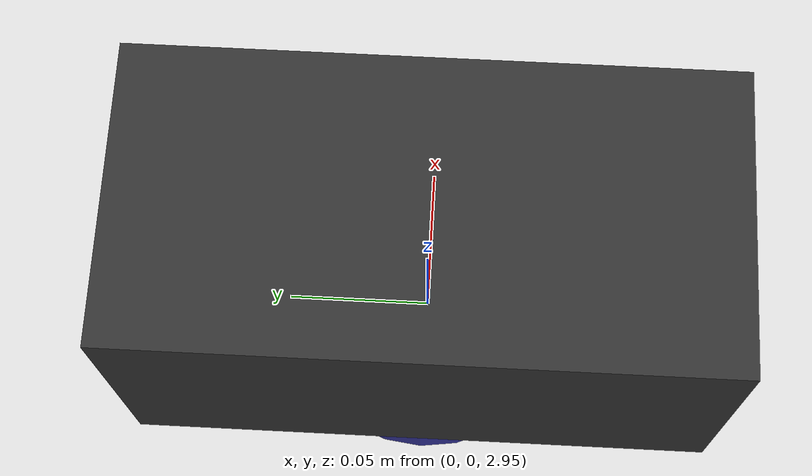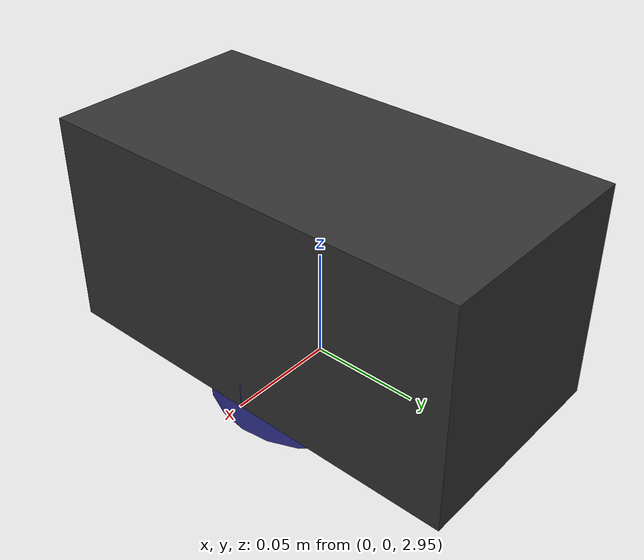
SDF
<?xml version="1.0" ?>

<sdf version="1.6">
  <world name="topcam">

    <!--Load the required camera plugin-->
    <plugin
      filename="gz-sim-sensors-system"
      name="gz::sim::systems::Sensors">
      <render_engine>ogre</render_engine>
    </plugin>

    <!--Since we loaded a plugin, gazebos server.config will be ignored -->
    <!--We have to explicitly include every other required plugin!      -->
    <plugin filename="gz-sim-physics-system"
            name="gz::sim::systems::Physics">
    </plugin>
    <plugin filename="gz-sim-user-commands-system"
            name="gz::sim::systems::UserCommands">
    </plugin>
    <plugin filename="gz-sim-scene-broadcaster-system"
            name="gz::sim::systems::SceneBroadcaster">
    </plugin>

    <include>
      <uri>https://fuel.gazebosim.org/1.0/OpenRobotics/models/Sun</uri>
    </include>
    <include>
      <uri>https://fuel.gazebosim.org/1.0/OpenRobotics/models/Ground Plane</uri>
    </include>

    <model name="topcam">
      <pose>0 0 3 0 1.575 0</pose>
      <static>true</static>

      <link name="topcam_link">

        <sensor type="camera" name="topcam_sensor">
          <camera>
            <horizontal_fov>1.047</horizontal_fov>
            <image>
              <width>320</width>
              <height>240</height>
            </image>
            <clip>
              <near>0.1</near>
              <far>100</far>
            </clip>
          </camera>
          <always_on>1</always_on>
          <update_rate>30</update_rate>
          <visualize>true</visualize>
        </sensor>

      <visual name="topcam_housing">
        <pose>0 0 0 0 0 0</pose>
        <geometry>
          <box>
            <size>0.1 0.2 0.1</size>
          </box>
        </geometry>
        <material>
          <diffuse>0.2 0.2 0.2 1</diffuse>
        </material>
      </visual>

      <visual name="topcam_lens">
        <pose>0.05 0 0 0 1.575 0</pose>
        <geometry>
          <cylinder>
            <radius>0.05</radius>
            <length>0.025</length>
          </cylinder>
        </geometry>
        <material>
          <diffuse>0.2 0.2 0.6 1</diffuse>
        </material>
      </visual>

      </link>
    </model>

  </world>
</sdf>
